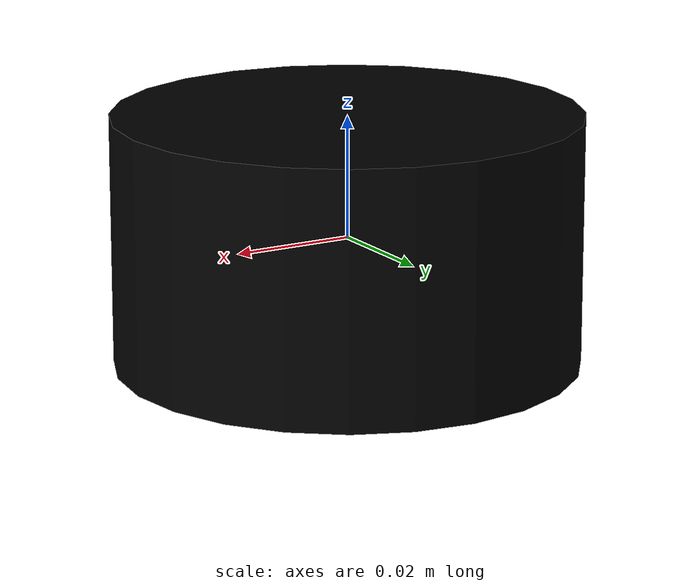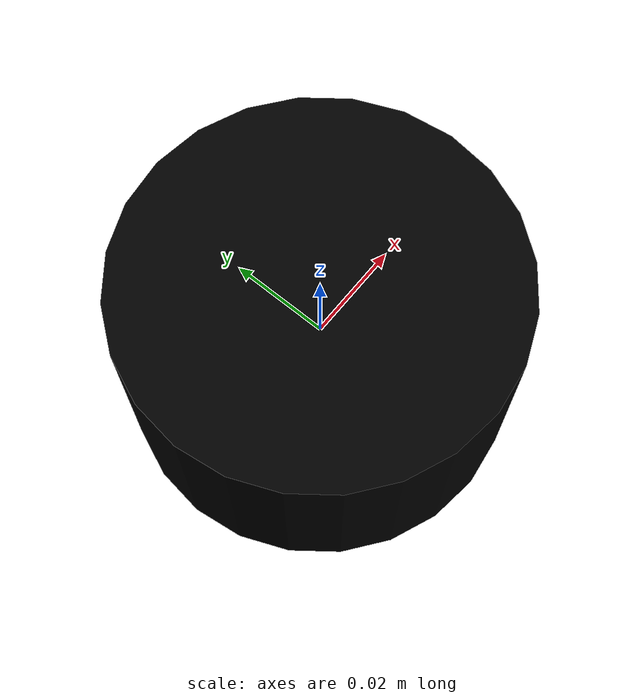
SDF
<?xml version='1.0'?>
<sdf version='1.10'>
  <model name='rplidar_a3'>
    <link name='lidar_link'>
      <inertial>
        <mass>0.001</mass>
        <inertia>
          <ixx>0.001</ixx>
          <ixy>0</ixy>
          <ixz>0</ixz>
          <iyy>0.001</iyy>
          <iyz>0</iyz>
          <izz>0.001</izz>
        </inertia>
      </inertial>
      <sensor name='gpu_lidar' type='gpu_lidar'>
        <topic>scan</topic>
        <update_rate>10</update_rate>
        <lidar>
          <scan>
            <horizontal>
              <samples>1600</samples>
              <resolution>1</resolution>
              <min_angle>-3.141592653589793</min_angle>
              <max_angle>3.141592653589793</max_angle>
            </horizontal>
            <vertical>
              <samples>1</samples>
              <resolution>1</resolution>
              <min_angle>0.0</min_angle>
              <max_angle>0.0</max_angle>
            </vertical>
          </scan>
          <range>
            <min>0.1</min>
            <max>10.0</max>
            <resolution>0.01</resolution>
          </range>
        </lidar>
        <visualize>false</visualize>
      </sensor>
      <visual name='visual'>
        <material>
          <diffuse>0 0 0 1</diffuse>
          <ambient>0 0 0 1</ambient>
          <specular>0 0 0 1</specular>
          <emissive>0 0 0 1</emissive>
          <diffuse>0 0 0 1</diffuse>
        </material>
        <geometry>
          <cylinder>
            <radius>0.038</radius>
            <length>0.041</length>
          </cylinder>
        </geometry>
        <cast_shadows>1</cast_shadows>
        <transparency>0</transparency>
      </visual>
    </link>
  </model>
</sdf>
